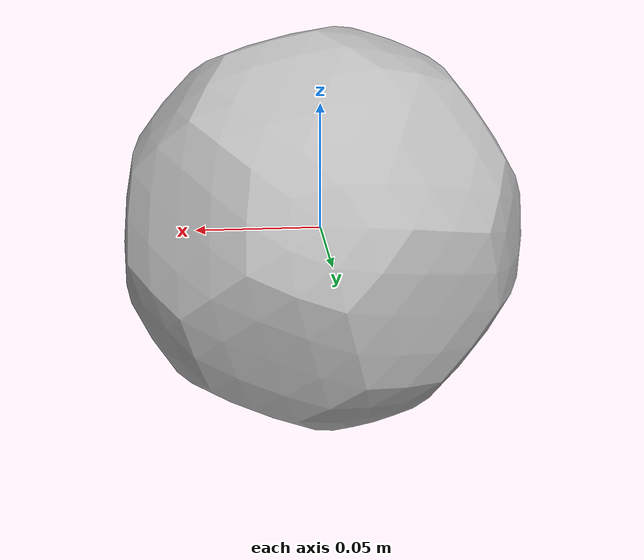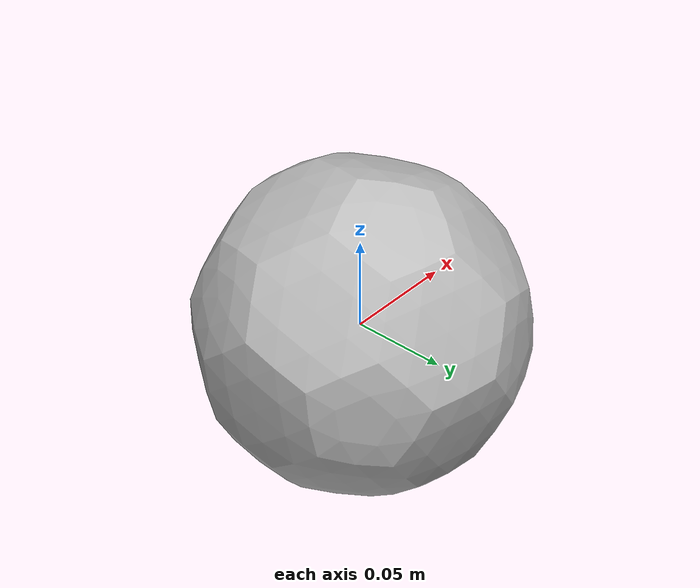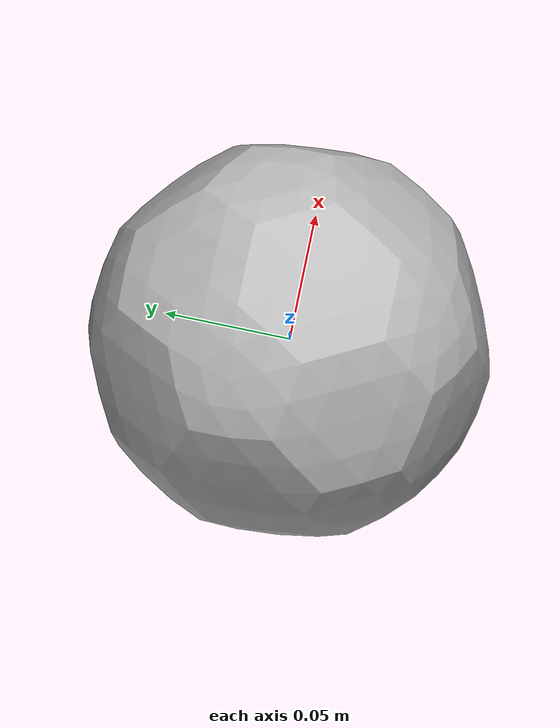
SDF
<?xml version='1.0'?>
<sdf version='1.7'>
  <model name='soccer_ball'>
    <link name='soccer_ball_link'>
      <pose>0 0 0 0 -0 0</pose>
      <inertial>
        <mass>0.026</mass>
        <inertia>
          <ixx>1.664e-05</ixx>
          <iyy>1.664e-05</iyy>
          <izz>1.664e-05</izz>
          <ixy>0</ixy>
          <ixz>0</ixz>
          <iyz>0</iyz>
        </inertia>
        <pose>0 0 0 0 -0 0</pose>
      </inertial>
      <self_collide>0</self_collide>
      <enable_wind>0</enable_wind>
      <kinematic>0</kinematic>
      <gravity>1</gravity>
      <visual name='visual'>
        <geometry>
          <mesh>
            <scale>0.08 0.08 0.08</scale>
            <uri>model://robocup_3Dsim_ball/meshes/ball.dae</uri>
          </mesh>
        </geometry>
        <material>
          <shader type='pixel'>
            <normal_map>__default__</normal_map>
          </shader>
        </material>
        <pose>0 0 0 0 -0 0</pose>
        <transparency>0</transparency>
        <cast_shadows>1</cast_shadows>
      </visual>
      <collision name='collision'>
        <laser_retro>0</laser_retro>
        <max_contacts>10</max_contacts>
        <pose>0 0 0 0 -0 0</pose>
        <geometry>
          <sphere>
            <radius>0.08</radius>
          </sphere>
        </geometry>
        <surface>
          <friction>
            <ode>
              <mu>1</mu>
              <mu2>1</mu2>
              <fdir1>0 0 0</fdir1>
              <slip1>0</slip1>
              <slip2>0</slip2>
            </ode>
            <torsional>
              <coefficient>1</coefficient>
              <patch_radius>0</patch_radius>
              <surface_radius>0</surface_radius>
              <use_patch_radius>1</use_patch_radius>
              <ode>
                <slip>0</slip>
              </ode>
            </torsional>
          </friction>
          <bounce>
            <restitution_coefficient>1</restitution_coefficient>
            <threshold>1</threshold>
          </bounce>
          <contact>
            <collide_without_contact>0</collide_without_contact>
            <collide_without_contact_bitmask>1</collide_without_contact_bitmask>
            <collide_bitmask>1</collide_bitmask>
            <ode>
              <soft_cfm>0</soft_cfm>
              <soft_erp>0.2</soft_erp>
              <kp>25000</kp>
              <kd>1</kd>
              <max_vel>0.1</max_vel>
              <min_depth>0</min_depth>
            </ode>
            <bullet>
              <split_impulse>1</split_impulse>
              <split_impulse_penetration_threshold>-0.01</split_impulse_penetration_threshold>
              <soft_cfm>0</soft_cfm>
              <soft_erp>0.2</soft_erp>
              <kp>25000</kp>
              <kd>1</kd>
            </bullet>
          </contact>
        </surface>
      </collision>
    </link>
    <static>0</static>
    <allow_auto_disable>1</allow_auto_disable>
  </model>
</sdf>
